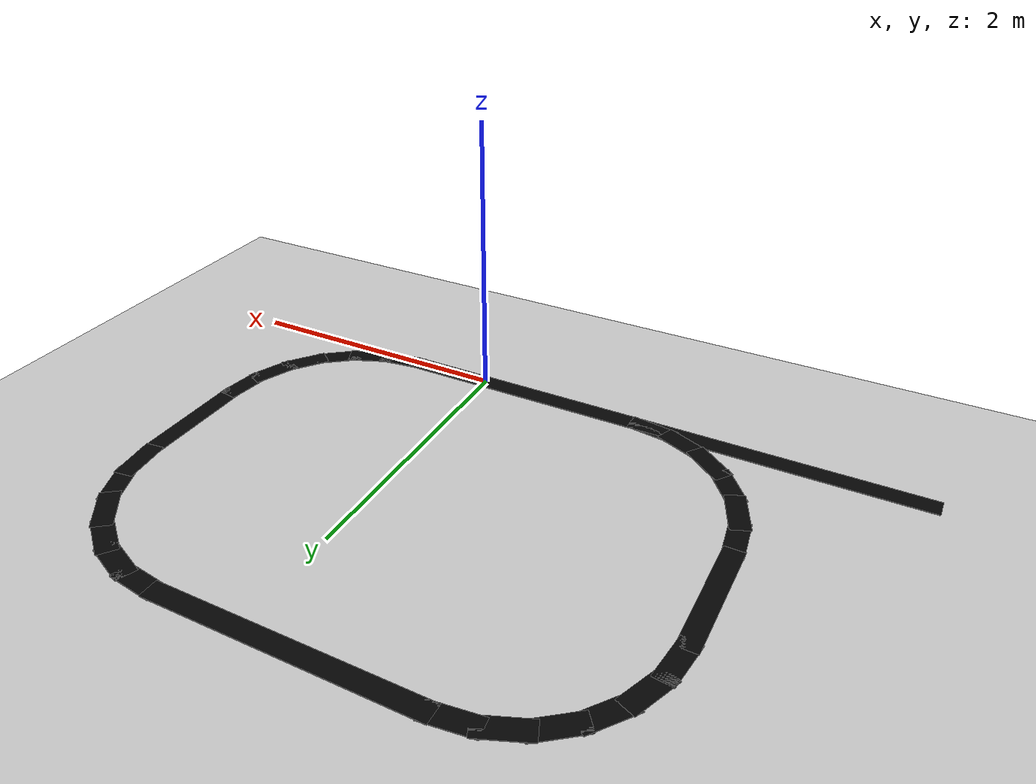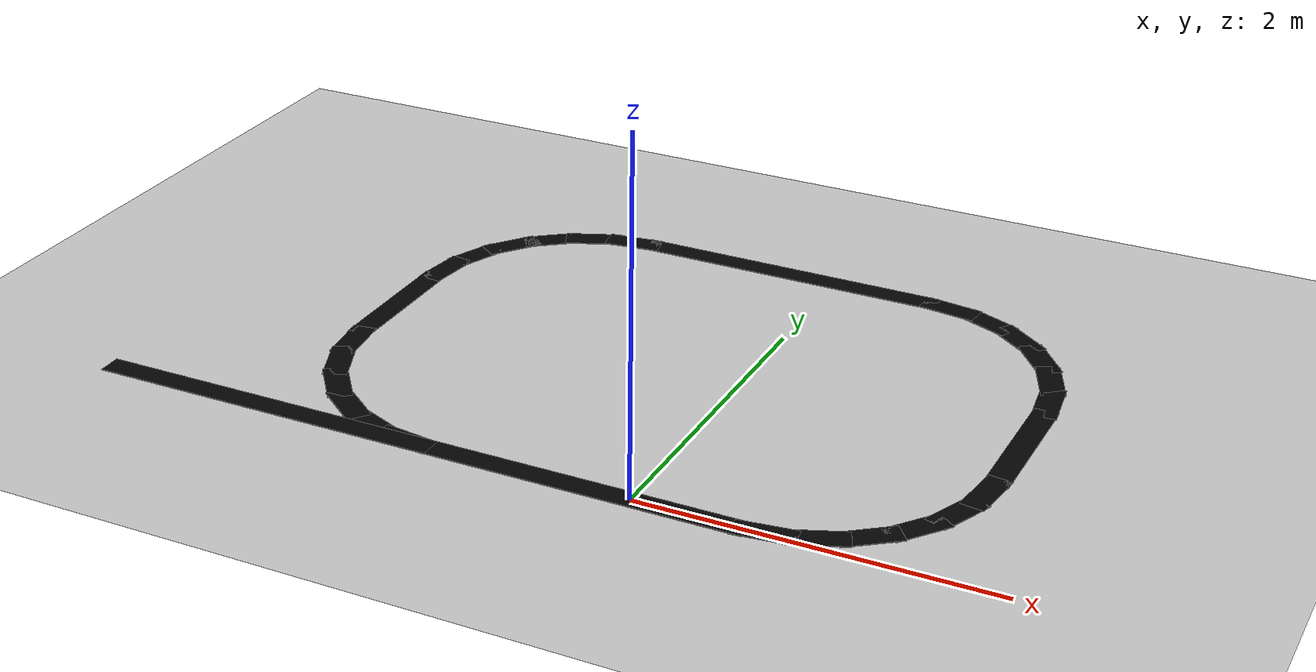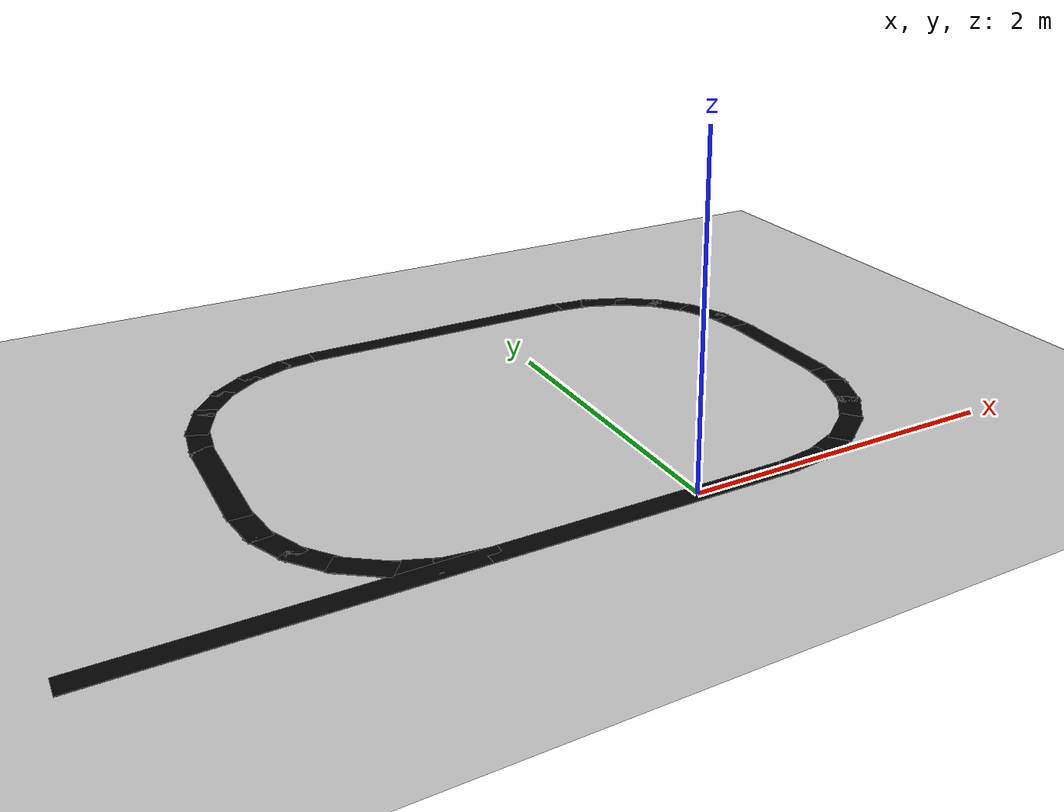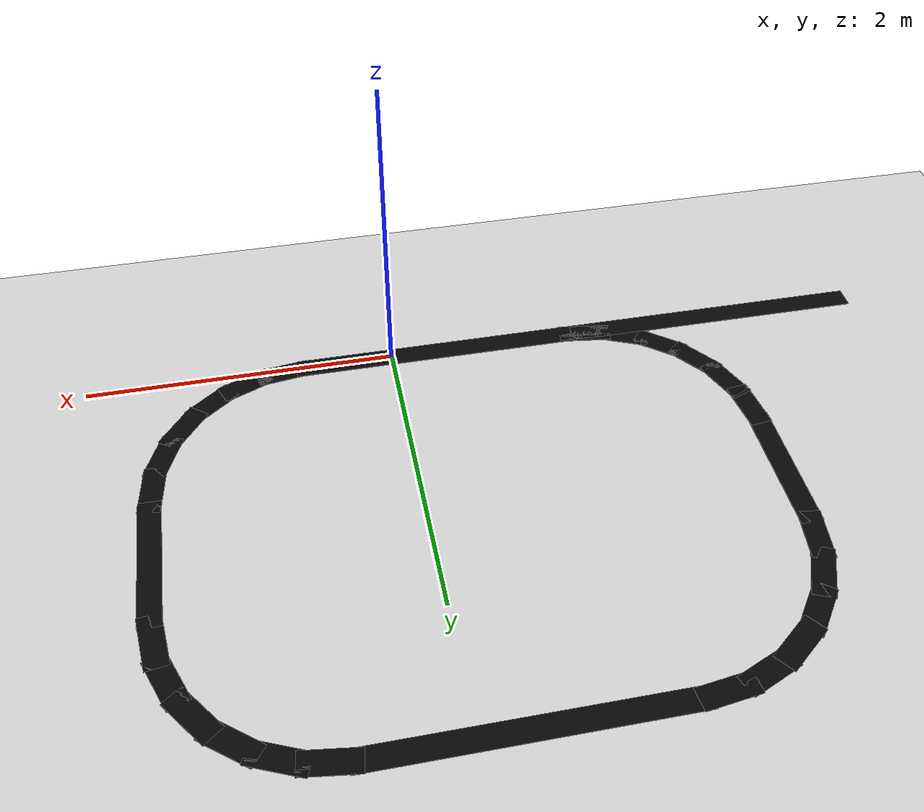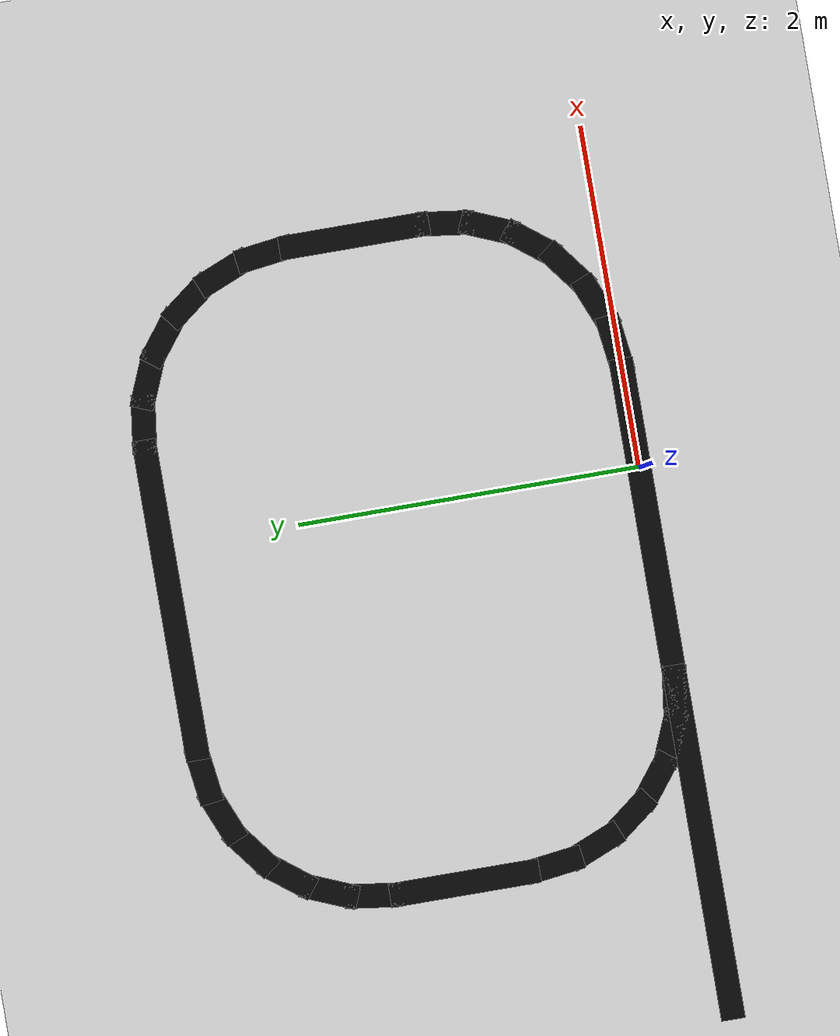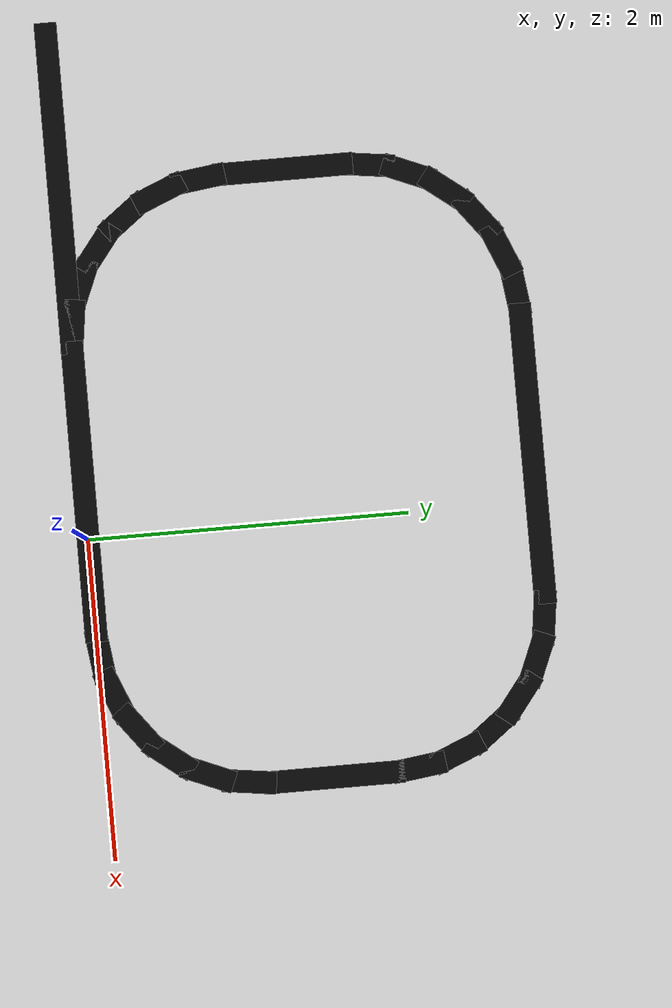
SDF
<?xml version="1.0"?>
<sdf version="1.8">
  <world name="line_track">
    <!-- Use Gazebo's default physics engine (DART on this ROS/Gazebo pairing). -->
    <physics name="1ms" type="ignored">
      <max_step_size>0.001</max_step_size>
      <real_time_factor>1.0</real_time_factor>
    </physics>

    <plugin filename="gz-sim-physics-system" name="gz::sim::systems::Physics"/>
    <plugin filename="gz-sim-imu-system" name="gz::sim::systems::Imu"/>
    <plugin filename="gz-sim-user-commands-system" name="gz::sim::systems::UserCommands"/>
    <plugin filename="gz-sim-scene-broadcaster-system" name="gz::sim::systems::SceneBroadcaster"/>
    <plugin filename="gz-sim-sensors-system" name="gz::sim::systems::Sensors">
      <render_engine>ogre2</render_engine>
    </plugin>

    <light type="directional" name="sun">
      <cast_shadows>true</cast_shadows>
      <pose>0 0 8 0 0 0</pose>
      <diffuse>0.95 0.95 0.95 1</diffuse>
      <specular>0.25 0.25 0.25 1</specular>
      <attenuation>
        <range>1000</range>
        <constant>0.9</constant>
        <linear>0.01</linear>
        <quadratic>0.001</quadratic>
      </attenuation>
      <direction>-0.5 0.1 -0.9</direction>
    </light>

    <model name="ground_plane">
      <static>true</static>
      <link name="link">
        <collision name="collision">
          <geometry>
            <plane>
              <normal>0 0 1</normal>
              <size>100 100</size>
            </plane>
          </geometry>
          <surface>
            <friction>
              <ode><mu>1.5</mu><mu2>1.5</mu2></ode>
            </friction>
          </surface>
        </collision>
        <visual name="visual">
          <geometry>
            <plane>
              <normal>0 0 1</normal>
              <size>100 100</size>
            </plane>
          </geometry>
          <material>
            <ambient>0.78 0.78 0.78 1</ambient>
            <diffuse>0.78 0.78 0.78 1</diffuse>
            <specular>0.15 0.15 0.15 1</specular>
          </material>
        </visual>
      </link>
    </model>

    <model name="line_track_marking">
      <static>true</static>
      <link name="link">
        <visual name="entry">
          <pose>-2.2 0 0.002 0 0 0</pose>
          <geometry><box><size>2.08 0.14 0.004</size></box></geometry>
          <material><ambient>0.015 0.015 0.015 1</ambient><diffuse>0.015 0.015 0.015 1</diffuse></material>
        </visual>
        <visual name="bottom_straight">
          <pose>-0.3 0 0.002 0 0 0</pose>
          <geometry><box><size>1.88 0.14 0.004</size></box></geometry>
          <material><ambient>0.015 0.015 0.015 1</ambient><diffuse>0.015 0.015 0.015 1</diffuse></material>
        </visual>
        <visual name="bottom_right_0">
          <pose>0.729 0.017 0.002 0 0 0.131</pose>
          <geometry><box><size>0.341 0.14 0.004</size></box></geometry>
          <material><ambient>0.015 0.015 0.015 1</ambient><diffuse>0.015 0.015 0.015 1</diffuse></material>
        </visual>
        <visual name="bottom_right_1">
          <pose>0.979 0.084 0.002 0 0 0.393</pose>
          <geometry><box><size>0.341 0.14 0.004</size></box></geometry>
          <material><ambient>0.015 0.015 0.015 1</ambient><diffuse>0.015 0.015 0.015 1</diffuse></material>
        </visual>
        <visual name="bottom_right_2">
          <pose>1.204 0.213 0.002 0 0 0.654</pose>
          <geometry><box><size>0.341 0.14 0.004</size></box></geometry>
          <material><ambient>0.015 0.015 0.015 1</ambient><diffuse>0.015 0.015 0.015 1</diffuse></material>
        </visual>
        <visual name="bottom_right_3">
          <pose>1.387 0.396 0.002 0 0 0.916</pose>
          <geometry><box><size>0.341 0.14 0.004</size></box></geometry>
          <material><ambient>0.015 0.015 0.015 1</ambient><diffuse>0.015 0.015 0.015 1</diffuse></material>
        </visual>
        <visual name="bottom_right_4">
          <pose>1.516 0.621 0.002 0 0 1.178</pose>
          <geometry><box><size>0.341 0.14 0.004</size></box></geometry>
          <material><ambient>0.015 0.015 0.015 1</ambient><diffuse>0.015 0.015 0.015 1</diffuse></material>
        </visual>
        <visual name="bottom_right_5">
          <pose>1.583 0.871 0.002 0 0 1.440</pose>
          <geometry><box><size>0.341 0.14 0.004</size></box></geometry>
          <material><ambient>0.015 0.015 0.015 1</ambient><diffuse>0.015 0.015 0.015 1</diffuse></material>
        </visual>
        <visual name="right_straight">
          <pose>1.6 1.4 0.002 0 0 1.571</pose>
          <geometry><box><size>0.88 0.14 0.004</size></box></geometry>
          <material><ambient>0.015 0.015 0.015 1</ambient><diffuse>0.015 0.015 0.015 1</diffuse></material>
        </visual>
        <visual name="top_right_0">
          <pose>1.583 1.929 0.002 0 0 1.702</pose>
          <geometry><box><size>0.341 0.14 0.004</size></box></geometry>
          <material><ambient>0.015 0.015 0.015 1</ambient><diffuse>0.015 0.015 0.015 1</diffuse></material>
        </visual>
        <visual name="top_right_1">
          <pose>1.516 2.179 0.002 0 0 1.963</pose>
          <geometry><box><size>0.341 0.14 0.004</size></box></geometry>
          <material><ambient>0.015 0.015 0.015 1</ambient><diffuse>0.015 0.015 0.015 1</diffuse></material>
        </visual>
        <visual name="top_right_2">
          <pose>1.387 2.404 0.002 0 0 2.225</pose>
          <geometry><box><size>0.341 0.14 0.004</size></box></geometry>
          <material><ambient>0.015 0.015 0.015 1</ambient><diffuse>0.015 0.015 0.015 1</diffuse></material>
        </visual>
        <visual name="top_right_3">
          <pose>1.204 2.587 0.002 0 0 2.487</pose>
          <geometry><box><size>0.341 0.14 0.004</size></box></geometry>
          <material><ambient>0.015 0.015 0.015 1</ambient><diffuse>0.015 0.015 0.015 1</diffuse></material>
        </visual>
        <visual name="top_right_4">
          <pose>0.979 2.716 0.002 0 0 2.749</pose>
          <geometry><box><size>0.341 0.14 0.004</size></box></geometry>
          <material><ambient>0.015 0.015 0.015 1</ambient><diffuse>0.015 0.015 0.015 1</diffuse></material>
        </visual>
        <visual name="top_right_5">
          <pose>0.729 2.783 0.002 0 0 3.011</pose>
          <geometry><box><size>0.341 0.14 0.004</size></box></geometry>
          <material><ambient>0.015 0.015 0.015 1</ambient><diffuse>0.015 0.015 0.015 1</diffuse></material>
        </visual>
        <visual name="top_straight">
          <pose>-0.3 2.8 0.002 0 0 3.142</pose>
          <geometry><box><size>1.88 0.14 0.004</size></box></geometry>
          <material><ambient>0.015 0.015 0.015 1</ambient><diffuse>0.015 0.015 0.015 1</diffuse></material>
        </visual>
        <visual name="top_left_0">
          <pose>-1.329 2.783 0.002 0 0 3.272</pose>
          <geometry><box><size>0.341 0.14 0.004</size></box></geometry>
          <material><ambient>0.015 0.015 0.015 1</ambient><diffuse>0.015 0.015 0.015 1</diffuse></material>
        </visual>
        <visual name="top_left_1">
          <pose>-1.579 2.716 0.002 0 0 3.534</pose>
          <geometry><box><size>0.341 0.14 0.004</size></box></geometry>
          <material><ambient>0.015 0.015 0.015 1</ambient><diffuse>0.015 0.015 0.015 1</diffuse></material>
        </visual>
        <visual name="top_left_2">
          <pose>-1.804 2.587 0.002 0 0 3.796</pose>
          <geometry><box><size>0.341 0.14 0.004</size></box></geometry>
          <material><ambient>0.015 0.015 0.015 1</ambient><diffuse>0.015 0.015 0.015 1</diffuse></material>
        </visual>
        <visual name="top_left_3">
          <pose>-1.987 2.404 0.002 0 0 4.058</pose>
          <geometry><box><size>0.341 0.14 0.004</size></box></geometry>
          <material><ambient>0.015 0.015 0.015 1</ambient><diffuse>0.015 0.015 0.015 1</diffuse></material>
        </visual>
        <visual name="top_left_4">
          <pose>-2.116 2.179 0.002 0 0 4.320</pose>
          <geometry><box><size>0.341 0.14 0.004</size></box></geometry>
          <material><ambient>0.015 0.015 0.015 1</ambient><diffuse>0.015 0.015 0.015 1</diffuse></material>
        </visual>
        <visual name="top_left_5">
          <pose>-2.183 1.929 0.002 0 0 4.581</pose>
          <geometry><box><size>0.341 0.14 0.004</size></box></geometry>
          <material><ambient>0.015 0.015 0.015 1</ambient><diffuse>0.015 0.015 0.015 1</diffuse></material>
        </visual>
        <visual name="left_straight">
          <pose>-2.2 1.4 0.002 0 0 -1.571</pose>
          <geometry><box><size>0.88 0.14 0.004</size></box></geometry>
          <material><ambient>0.015 0.015 0.015 1</ambient><diffuse>0.015 0.015 0.015 1</diffuse></material>
        </visual>
        <visual name="bottom_left_0">
          <pose>-2.183 0.871 0.002 0 0 4.843</pose>
          <geometry><box><size>0.341 0.14 0.004</size></box></geometry>
          <material><ambient>0.015 0.015 0.015 1</ambient><diffuse>0.015 0.015 0.015 1</diffuse></material>
        </visual>
        <visual name="bottom_left_1">
          <pose>-2.116 0.621 0.002 0 0 5.105</pose>
          <geometry><box><size>0.341 0.14 0.004</size></box></geometry>
          <material><ambient>0.015 0.015 0.015 1</ambient><diffuse>0.015 0.015 0.015 1</diffuse></material>
        </visual>
        <visual name="bottom_left_2">
          <pose>-1.987 0.396 0.002 0 0 5.367</pose>
          <geometry><box><size>0.341 0.14 0.004</size></box></geometry>
          <material><ambient>0.015 0.015 0.015 1</ambient><diffuse>0.015 0.015 0.015 1</diffuse></material>
        </visual>
        <visual name="bottom_left_3">
          <pose>-1.804 0.213 0.002 0 0 5.629</pose>
          <geometry><box><size>0.341 0.14 0.004</size></box></geometry>
          <material><ambient>0.015 0.015 0.015 1</ambient><diffuse>0.015 0.015 0.015 1</diffuse></material>
        </visual>
        <visual name="bottom_left_4">
          <pose>-1.579 0.084 0.002 0 0 5.890</pose>
          <geometry><box><size>0.341 0.14 0.004</size></box></geometry>
          <material><ambient>0.015 0.015 0.015 1</ambient><diffuse>0.015 0.015 0.015 1</diffuse></material>
        </visual>
        <visual name="bottom_left_5">
          <pose>-1.329 0.017 0.002 0 0 6.152</pose>
          <geometry><box><size>0.341 0.14 0.004</size></box></geometry>
          <material><ambient>0.015 0.015 0.015 1</ambient><diffuse>0.015 0.015 0.015 1</diffuse></material>
        </visual>
      </link>
    </model>
  </world>
</sdf>
